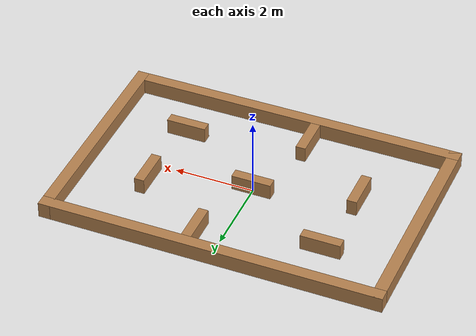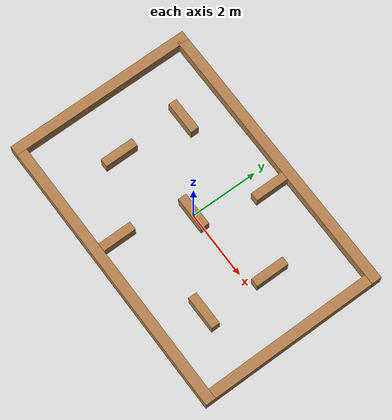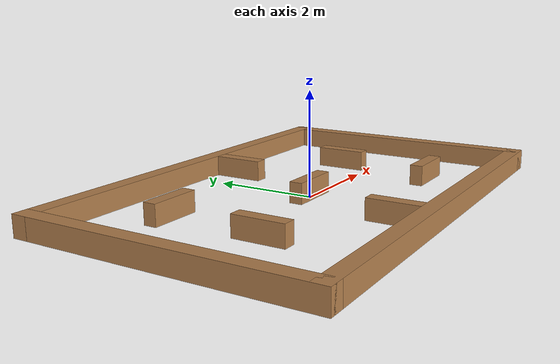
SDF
<?xml version='1.0'?>
<sdf version='1.6'>
  <model name='ICRA2019_map'>
    <link name='Wall_0'>
      <pose frame=''>0 -2.65 0 0 -0 0</pose>
      <self_collide>0</self_collide>
      <kinematic>0</kinematic>
      <visual name='Wall_0_Visual'>
        <pose frame=''>0 0 0.2 0 -0 0</pose>
        <geometry>
          <box>
            <size>8.6 0.3 0.4</size>
          </box>
        </geometry>
        <material>
          <script>
            <uri>file://media/materials/scripts/gazebo.material</uri>
            <name>Gazebo/Wood</name>
          </script>
          <ambient>0.996078 0.47451 0.0196078 1</ambient>
          <diffuse>1 1 1 1</diffuse>
          <specular>0.2 0.2 0.2 1</specular>
          <emissive>0 0 0 1</emissive>
        </material>
        <cast_shadows>1</cast_shadows>
        <transparency>0</transparency>
      </visual>
      <collision name='Wall_0_Collision'>
        <laser_retro>0</laser_retro>
        <max_contacts>10</max_contacts>
        <pose frame=''>0 0 0.2 0 -0 0</pose>
        <geometry>
          <box>
            <size>8.6 0.3 0.4</size>
          </box>
        </geometry>
        <surface>
          <friction>
            <ode>
              <mu>1</mu>
              <mu2>1</mu2>
              <fdir1>0 0 0</fdir1>
              <slip1>0</slip1>
              <slip2>0</slip2>
            </ode>
            <torsional>
              <coefficient>1</coefficient>
              <patch_radius>0</patch_radius>
              <surface_radius>0</surface_radius>
              <use_patch_radius>1</use_patch_radius>
              <ode>
                <slip>0</slip>
              </ode>
            </torsional>
          </friction>
          <bounce>
            <restitution_coefficient>0</restitution_coefficient>
            <threshold>1e+06</threshold>
          </bounce>
          <contact>
            <collide_without_contact>0</collide_without_contact>
            <collide_without_contact_bitmask>1</collide_without_contact_bitmask>
            <collide_bitmask>1</collide_bitmask>
            <ode>
              <soft_cfm>0</soft_cfm>
              <soft_erp>0.2</soft_erp>
              <kp>1e+13</kp>
              <kd>1</kd>
              <max_vel>0.01</max_vel>
              <min_depth>0</min_depth>
            </ode>
            <bullet>
              <split_impulse>1</split_impulse>
              <split_impulse_penetration_threshold>-0.01</split_impulse_penetration_threshold>
              <soft_cfm>0</soft_cfm>
              <soft_erp>0.2</soft_erp>
              <kp>1e+13</kp>
              <kd>1</kd>
            </bullet>
          </contact>
        </surface>
      </collision>
    </link>
    <link name='Wall_1'>
      <pose frame=''>4.15 0 0 0 -0 1.5708</pose>
      <self_collide>0</self_collide>
      <kinematic>0</kinematic>
      <visual name='Wall_1_Visual'>
        <pose frame=''>0 0 0.2 0 -0 0</pose>
        <geometry>
          <box>
            <size>5.6 0.3 0.4</size>
          </box>
        </geometry>
        <material>
          <script>
            <uri>file://media/materials/scripts/gazebo.material</uri>
            <name>Gazebo/Wood</name>
          </script>
          <ambient>0.996078 0.47451 0.0196078 1</ambient>
          <diffuse>1 1 1 1</diffuse>
          <specular>0.2 0.2 0.2 1</specular>
          <emissive>0 0 0 1</emissive>
        </material>
        <cast_shadows>1</cast_shadows>
        <transparency>0</transparency>
      </visual>
      <collision name='Wall_1_Collision'>
        <laser_retro>0</laser_retro>
        <max_contacts>10</max_contacts>
        <pose frame=''>0 0 0.2 0 -0 0</pose>
        <geometry>
          <box>
            <size>5.6 0.3 0.4</size>
          </box>
        </geometry>
        <surface>
          <friction>
            <ode>
              <mu>1</mu>
              <mu2>1</mu2>
              <fdir1>0 0 0</fdir1>
              <slip1>0</slip1>
              <slip2>0</slip2>
            </ode>
            <torsional>
              <coefficient>1</coefficient>
              <patch_radius>0</patch_radius>
              <surface_radius>0</surface_radius>
              <use_patch_radius>1</use_patch_radius>
              <ode>
                <slip>0</slip>
              </ode>
            </torsional>
          </friction>
          <bounce>
            <restitution_coefficient>0</restitution_coefficient>
            <threshold>1e+06</threshold>
          </bounce>
          <contact>
            <collide_without_contact>0</collide_without_contact>
            <collide_without_contact_bitmask>1</collide_without_contact_bitmask>
            <collide_bitmask>1</collide_bitmask>
            <ode>
              <soft_cfm>0</soft_cfm>
              <soft_erp>0.2</soft_erp>
              <kp>1e+13</kp>
              <kd>1</kd>
              <max_vel>0.01</max_vel>
              <min_depth>0</min_depth>
            </ode>
            <bullet>
              <split_impulse>1</split_impulse>
              <split_impulse_penetration_threshold>-0.01</split_impulse_penetration_threshold>
              <soft_cfm>0</soft_cfm>
              <soft_erp>0.2</soft_erp>
              <kp>1e+13</kp>
              <kd>1</kd>
            </bullet>
          </contact>
        </surface>
      </collision>
    </link>
    <link name='Wall_11'>
      <pose frame=''>-2.475 -0.6 0 0 0 -1.5708</pose>
      <self_collide>0</self_collide>
      <kinematic>0</kinematic>
      <gravity>1</gravity>
      <inertial>
        <mass>1</mass>
        <pose frame=''>0 0 0 0 -0 0</pose>
        <inertia>
          <ixx>1</ixx>
          <ixy>0</ixy>
          <ixz>0</ixz>
          <iyy>1</iyy>
          <iyz>0</iyz>
          <izz>1</izz>
        </inertia>
      </inertial>
      <visual name='Wall_11_Visual'>
        <pose frame=''>0 0 0.2 0 -0 0</pose>
        <geometry>
          <box>
            <size>1 0.25 0.4</size>
          </box>
        </geometry>
        <material>
          <script>
            <uri>file://media/materials/scripts/gazebo.material</uri>
            <name>Gazebo/Wood</name>
          </script>
          <ambient>0.996 0.475 0.02 1</ambient>
          <diffuse>1 1 1 1</diffuse>
          <specular>0.2 0.2 0.2 1</specular>
          <emissive>0 0 0 1</emissive>
          <shader type='vertex'>
            <normal_map>__default__</normal_map>
          </shader>
        </material>
        <cast_shadows>1</cast_shadows>
        <transparency>0</transparency>
      </visual>
      <collision name='Wall_11_Collision'>
        <laser_retro>0</laser_retro>
        <max_contacts>10</max_contacts>
        <pose frame=''>0 0 0.2 0 -0 0</pose>
        <geometry>
          <box>
            <size>1 0.25 0.4</size>
          </box>
        </geometry>
        <surface>
          <friction>
            <ode>
              <mu>1</mu>
              <mu2>1</mu2>
              <fdir1>0 0 0</fdir1>
              <slip1>0</slip1>
              <slip2>0</slip2>
            </ode>
            <torsional>
              <coefficient>1</coefficient>
              <patch_radius>0</patch_radius>
              <surface_radius>0</surface_radius>
              <use_patch_radius>1</use_patch_radius>
              <ode>
                <slip>0</slip>
              </ode>
            </torsional>
          </friction>
          <bounce>
            <restitution_coefficient>0</restitution_coefficient>
            <threshold>1e+06</threshold>
          </bounce>
          <contact>
            <collide_without_contact>0</collide_without_contact>
            <collide_without_contact_bitmask>1</collide_without_contact_bitmask>
            <collide_bitmask>1</collide_bitmask>
            <ode>
              <soft_cfm>0</soft_cfm>
              <soft_erp>0.2</soft_erp>
              <kp>1e+13</kp>
              <kd>1</kd>
              <max_vel>0.01</max_vel>
              <min_depth>0</min_depth>
            </ode>
            <bullet>
              <split_impulse>1</split_impulse>
              <split_impulse_penetration_threshold>-0.01</split_impulse_penetration_threshold>
              <soft_cfm>0</soft_cfm>
              <soft_erp>0.2</soft_erp>
              <kp>1e+13</kp>
              <kd>1</kd>
            </bullet>
          </contact>
        </surface>
      </collision>
    </link>
    <link name='Wall_13'>
      <pose frame=''>0.625 2 0 0 0 -1.5708</pose>
      <self_collide>0</self_collide>
      <kinematic>0</kinematic>
      <gravity>1</gravity>
      <inertial>
        <mass>1</mass>
        <pose frame=''>0 0 0 0 -0 0</pose>
        <inertia>
          <ixx>1</ixx>
          <ixy>0</ixy>
          <ixz>0</ixz>
          <iyy>1</iyy>
          <iyz>0</iyz>
          <izz>1</izz>
        </inertia>
      </inertial>
      <visual name='Wall_13_Visual'>
        <pose frame=''>0 0 0.2 0 -0 0</pose>
        <geometry>
          <box>
            <size>1 0.25 0.4</size>
          </box>
        </geometry>
        <material>
          <script>
            <uri>file://media/materials/scripts/gazebo.material</uri>
            <name>Gazebo/Wood</name>
          </script>
          <ambient>0.996 0.475 0.02 1</ambient>
          <diffuse>1 1 1 1</diffuse>
          <specular>0.2 0.2 0.2 1</specular>
          <emissive>0 0 0 1</emissive>
          <shader type='vertex'>
            <normal_map>__default__</normal_map>
          </shader>
        </material>
        <cast_shadows>1</cast_shadows>
        <transparency>0</transparency>
      </visual>
      <collision name='Wall_13_Collision'>
        <laser_retro>0</laser_retro>
        <max_contacts>10</max_contacts>
        <pose frame=''>0 0 0.2 0 -0 0</pose>
        <geometry>
          <box>
            <size>1 0.25 0.4</size>
          </box>
        </geometry>
        <surface>
          <friction>
            <ode>
              <mu>1</mu>
              <mu2>1</mu2>
              <fdir1>0 0 0</fdir1>
              <slip1>0</slip1>
              <slip2>0</slip2>
            </ode>
            <torsional>
              <coefficient>1</coefficient>
              <patch_radius>0</patch_radius>
              <surface_radius>0</surface_radius>
              <use_patch_radius>1</use_patch_radius>
              <ode>
                <slip>0</slip>
              </ode>
            </torsional>
          </friction>
          <bounce>
            <restitution_coefficient>0</restitution_coefficient>
            <threshold>1e+06</threshold>
          </bounce>
          <contact>
            <collide_without_contact>0</collide_without_contact>
            <collide_without_contact_bitmask>1</collide_without_contact_bitmask>
            <collide_bitmask>1</collide_bitmask>
            <ode>
              <soft_cfm>0</soft_cfm>
              <soft_erp>0.2</soft_erp>
              <kp>1e+13</kp>
              <kd>1</kd>
              <max_vel>0.01</max_vel>
              <min_depth>0</min_depth>
            </ode>
            <bullet>
              <split_impulse>1</split_impulse>
              <split_impulse_penetration_threshold>-0.01</split_impulse_penetration_threshold>
              <soft_cfm>0</soft_cfm>
              <soft_erp>0.2</soft_erp>
              <kp>1e+13</kp>
              <kd>1</kd>
            </bullet>
          </contact>
        </surface>
      </collision>
    </link>
    <link name='Wall_15'>
      <pose frame=''>2.475 0.6 0 0 -0 1.5708</pose>
      <self_collide>0</self_collide>
      <kinematic>0</kinematic>
      <gravity>1</gravity>
      <inertial>
        <mass>1</mass>
        <pose frame=''>0 0 0 0 -0 0</pose>
        <inertia>
          <ixx>1</ixx>
          <ixy>0</ixy>
          <ixz>0</ixz>
          <iyy>1</iyy>
          <iyz>0</iyz>
          <izz>1</izz>
        </inertia>
      </inertial>
      <visual name='Wall_15_Visual'>
        <pose frame=''>0 0 0.2 0 -0 0</pose>
        <geometry>
          <box>
            <size>1 0.25 0.4</size>
          </box>
        </geometry>
        <material>
          <script>
            <uri>file://media/materials/scripts/gazebo.material</uri>
            <name>Gazebo/Wood</name>
          </script>
          <ambient>0.996 0.475 0.02 1</ambient>
          <diffuse>1 1 1 1</diffuse>
          <specular>0.2 0.2 0.2 1</specular>
          <emissive>0 0 0 1</emissive>
          <shader type='vertex'>
            <normal_map>__default__</normal_map>
          </shader>
        </material>
        <cast_shadows>1</cast_shadows>
        <transparency>0</transparency>
      </visual>
      <collision name='Wall_15_Collision'>
        <laser_retro>0</laser_retro>
        <max_contacts>10</max_contacts>
        <pose frame=''>0 0 0.2 0 -0 0</pose>
        <geometry>
          <box>
            <size>1 0.25 0.4</size>
          </box>
        </geometry>
        <surface>
          <friction>
            <ode>
              <mu>1</mu>
              <mu2>1</mu2>
              <fdir1>0 0 0</fdir1>
              <slip1>0</slip1>
              <slip2>0</slip2>
            </ode>
            <torsional>
              <coefficient>1</coefficient>
              <patch_radius>0</patch_radius>
              <surface_radius>0</surface_radius>
              <use_patch_radius>1</use_patch_radius>
              <ode>
                <slip>0</slip>
              </ode>
            </torsional>
          </friction>
          <bounce>
            <restitution_coefficient>0</restitution_coefficient>
            <threshold>1e+06</threshold>
          </bounce>
          <contact>
            <collide_without_contact>0</collide_without_contact>
            <collide_without_contact_bitmask>1</collide_without_contact_bitmask>
            <collide_bitmask>1</collide_bitmask>
            <ode>
              <soft_cfm>0</soft_cfm>
              <soft_erp>0.2</soft_erp>
              <kp>1e+13</kp>
              <kd>1</kd>
              <max_vel>0.01</max_vel>
              <min_depth>0</min_depth>
            </ode>
            <bullet>
              <split_impulse>1</split_impulse>
              <split_impulse_penetration_threshold>-0.01</split_impulse_penetration_threshold>
              <soft_cfm>0</soft_cfm>
              <soft_erp>0.2</soft_erp>
              <kp>1e+13</kp>
              <kd>1</kd>
            </bullet>
          </contact>
        </surface>
      </collision>
    </link>
    <link name='Wall_17'>
      <pose frame=''>2.3 -1.375 0 0 -0 3.14159</pose>
      <self_collide>0</self_collide>
      <kinematic>0</kinematic>
      <gravity>1</gravity>
      <inertial>
        <mass>1</mass>
        <pose frame=''>0 0 0 0 -0 0</pose>
        <inertia>
          <ixx>1</ixx>
          <ixy>0</ixy>
          <ixz>0</ixz>
          <iyy>1</iyy>
          <iyz>0</iyz>
          <izz>1</izz>
        </inertia>
      </inertial>
      <visual name='Wall_17_Visual'>
        <pose frame=''>0 0 0.2 0 -0 0</pose>
        <geometry>
          <box>
            <size>1 0.25 0.4</size>
          </box>
        </geometry>
        <material>
          <script>
            <uri>file://media/materials/scripts/gazebo.material</uri>
            <name>Gazebo/Wood</name>
          </script>
          <ambient>0.996 0.475 0.02 1</ambient>
          <diffuse>1 1 1 1</diffuse>
          <specular>0.2 0.2 0.2 1</specular>
          <emissive>0 0 0 1</emissive>
          <shader type='vertex'>
            <normal_map>__default__</normal_map>
          </shader>
        </material>
        <cast_shadows>1</cast_shadows>
        <transparency>0</transparency>
      </visual>
      <collision name='Wall_17_Collision'>
        <laser_retro>0</laser_retro>
        <max_contacts>10</max_contacts>
        <pose frame=''>0 0 0.2 0 -0 0</pose>
        <geometry>
          <box>
            <size>1 0.25 0.4</size>
          </box>
        </geometry>
        <surface>
          <friction>
            <ode>
              <mu>1</mu>
              <mu2>1</mu2>
              <fdir1>0 0 0</fdir1>
              <slip1>0</slip1>
              <slip2>0</slip2>
            </ode>
            <torsional>
              <coefficient>1</coefficient>
              <patch_radius>0</patch_radius>
              <surface_radius>0</surface_radius>
              <use_patch_radius>1</use_patch_radius>
              <ode>
                <slip>0</slip>
              </ode>
            </torsional>
          </friction>
          <bounce>
            <restitution_coefficient>0</restitution_coefficient>
            <threshold>1e+06</threshold>
          </bounce>
          <contact>
            <collide_without_contact>0</collide_without_contact>
            <collide_without_contact_bitmask>1</collide_without_contact_bitmask>
            <collide_bitmask>1</collide_bitmask>
            <ode>
              <soft_cfm>0</soft_cfm>
              <soft_erp>0.2</soft_erp>
              <kp>1e+13</kp>
              <kd>1</kd>
              <max_vel>0.01</max_vel>
              <min_depth>0</min_depth>
            </ode>
            <bullet>
              <split_impulse>1</split_impulse>
              <split_impulse_penetration_threshold>-0.01</split_impulse_penetration_threshold>
              <soft_cfm>0</soft_cfm>
              <soft_erp>0.2</soft_erp>
              <kp>1e+13</kp>
              <kd>1</kd>
            </bullet>
          </contact>
        </surface>
      </collision>
    </link>
    <link name='Wall_2'>
      <pose frame=''>0 2.65 0 0 -0 3.14159</pose>
      <self_collide>0</self_collide>
      <kinematic>0</kinematic>
      <visual name='Wall_2_Visual'>
        <pose frame=''>0 0 0.2 0 -0 0</pose>
        <geometry>
          <box>
            <size>8.6 0.3 0.4</size>
          </box>
        </geometry>
        <material>
          <script>
            <uri>file://media/materials/scripts/gazebo.material</uri>
            <name>Gazebo/Wood</name>
          </script>
          <ambient>0.996078 0.47451 0.0196078 1</ambient>
          <diffuse>1 1 1 1</diffuse>
          <specular>0.2 0.2 0.2 1</specular>
          <emissive>0 0 0 1</emissive>
        </material>
        <cast_shadows>1</cast_shadows>
        <transparency>0</transparency>
      </visual>
      <collision name='Wall_2_Collision'>
        <laser_retro>0</laser_retro>
        <max_contacts>10</max_contacts>
        <pose frame=''>0 0 0.2 0 -0 0</pose>
        <geometry>
          <box>
            <size>8.6 0.3 0.4</size>
          </box>
        </geometry>
        <surface>
          <friction>
            <ode>
              <mu>1</mu>
              <mu2>1</mu2>
              <fdir1>0 0 0</fdir1>
              <slip1>0</slip1>
              <slip2>0</slip2>
            </ode>
            <torsional>
              <coefficient>1</coefficient>
              <patch_radius>0</patch_radius>
              <surface_radius>0</surface_radius>
              <use_patch_radius>1</use_patch_radius>
              <ode>
                <slip>0</slip>
              </ode>
            </torsional>
          </friction>
          <bounce>
            <restitution_coefficient>0</restitution_coefficient>
            <threshold>1e+06</threshold>
          </bounce>
          <contact>
            <collide_without_contact>0</collide_without_contact>
            <collide_without_contact_bitmask>1</collide_without_contact_bitmask>
            <collide_bitmask>1</collide_bitmask>
            <ode>
              <soft_cfm>0</soft_cfm>
              <soft_erp>0.2</soft_erp>
              <kp>1e+13</kp>
              <kd>1</kd>
              <max_vel>0.01</max_vel>
              <min_depth>0</min_depth>
            </ode>
            <bullet>
              <split_impulse>1</split_impulse>
              <split_impulse_penetration_threshold>-0.01</split_impulse_penetration_threshold>
              <soft_cfm>0</soft_cfm>
              <soft_erp>0.2</soft_erp>
              <kp>1e+13</kp>
              <kd>1</kd>
            </bullet>
          </contact>
        </surface>
      </collision>
    </link>
    <link name='Wall_3'>
      <pose frame=''>-4.15 0 0 0 0 -1.5708</pose>
      <self_collide>0</self_collide>
      <kinematic>0</kinematic>
      <visual name='Wall_3_Visual'>
        <pose frame=''>0 0 0.2 0 -0 0</pose>
        <geometry>
          <box>
            <size>5.6 0.3 0.4</size>
          </box>
        </geometry>
        <material>
          <script>
            <uri>file://media/materials/scripts/gazebo.material</uri>
            <name>Gazebo/Wood</name>
          </script>
          <ambient>0.996078 0.47451 0.0196078 1</ambient>
          <diffuse>1 1 1 1</diffuse>
          <specular>0.2 0.2 0.2 1</specular>
          <emissive>0 0 0 1</emissive>
        </material>
        <cast_shadows>1</cast_shadows>
        <transparency>0</transparency>
      </visual>
      <collision name='Wall_3_Collision'>
        <laser_retro>0</laser_retro>
        <max_contacts>10</max_contacts>
        <pose frame=''>0 0 0.2 0 -0 0</pose>
        <geometry>
          <box>
            <size>5.6 0.3 0.4</size>
          </box>
        </geometry>
        <surface>
          <friction>
            <ode>
              <mu>1</mu>
              <mu2>1</mu2>
              <fdir1>0 0 0</fdir1>
              <slip1>0</slip1>
              <slip2>0</slip2>
            </ode>
            <torsional>
              <coefficient>1</coefficient>
              <patch_radius>0</patch_radius>
              <surface_radius>0</surface_radius>
              <use_patch_radius>1</use_patch_radius>
              <ode>
                <slip>0</slip>
              </ode>
            </torsional>
          </friction>
          <bounce>
            <restitution_coefficient>0</restitution_coefficient>
            <threshold>1e+06</threshold>
          </bounce>
          <contact>
            <collide_without_contact>0</collide_without_contact>
            <collide_without_contact_bitmask>1</collide_without_contact_bitmask>
            <collide_bitmask>1</collide_bitmask>
            <ode>
              <soft_cfm>0</soft_cfm>
              <soft_erp>0.2</soft_erp>
              <kp>1e+13</kp>
              <kd>1</kd>
              <max_vel>0.01</max_vel>
              <min_depth>0</min_depth>
            </ode>
            <bullet>
              <split_impulse>1</split_impulse>
              <split_impulse_penetration_threshold>-0.01</split_impulse_penetration_threshold>
              <soft_cfm>0</soft_cfm>
              <soft_erp>0.2</soft_erp>
              <kp>1e+13</kp>
              <kd>1</kd>
            </bullet>
          </contact>
        </surface>
      </collision>
    </link>
    <link name='Wall_5'>
      <pose frame=''>-0.625 -2 0 0 0 -1.5708</pose>
      <self_collide>0</self_collide>
      <kinematic>0</kinematic>
      <gravity>1</gravity>
      <inertial>
        <mass>1</mass>
        <pose frame=''>0 0 0 0 -0 0</pose>
        <inertia>
          <ixx>1</ixx>
          <ixy>0</ixy>
          <ixz>0</ixz>
          <iyy>1</iyy>
          <iyz>0</iyz>
          <izz>1</izz>
        </inertia>
      </inertial>
      <visual name='Wall_5_Visual'>
        <pose frame=''>0 0 0.2 0 -0 0</pose>
        <geometry>
          <box>
            <size>1 0.25 0.4</size>
          </box>
        </geometry>
        <material>
          <script>
            <uri>file://media/materials/scripts/gazebo.material</uri>
            <name>Gazebo/Wood</name>
          </script>
          <ambient>0.996 0.475 0.02 1</ambient>
          <diffuse>1 1 1 1</diffuse>
          <specular>0.2 0.2 0.2 1</specular>
          <emissive>0 0 0 1</emissive>
          <shader type='vertex'>
            <normal_map>__default__</normal_map>
          </shader>
        </material>
        <cast_shadows>1</cast_shadows>
        <transparency>0</transparency>
      </visual>
      <collision name='Wall_5_Collision'>
        <laser_retro>0</laser_retro>
        <max_contacts>10</max_contacts>
        <pose frame=''>0 0 0.2 0 -0 0</pose>
        <geometry>
          <box>
            <size>1 0.25 0.4</size>
          </box>
        </geometry>
        <surface>
          <friction>
            <ode>
              <mu>1</mu>
              <mu2>1</mu2>
              <fdir1>0 0 0</fdir1>
              <slip1>0</slip1>
              <slip2>0</slip2>
            </ode>
            <torsional>
              <coefficient>1</coefficient>
              <patch_radius>0</patch_radius>
              <surface_radius>0</surface_radius>
              <use_patch_radius>1</use_patch_radius>
              <ode>
                <slip>0</slip>
              </ode>
            </torsional>
          </friction>
          <bounce>
            <restitution_coefficient>0</restitution_coefficient>
            <threshold>1e+06</threshold>
          </bounce>
          <contact>
            <collide_without_contact>0</collide_without_contact>
            <collide_without_contact_bitmask>1</collide_without_contact_bitmask>
            <collide_bitmask>1</collide_bitmask>
            <ode>
              <soft_cfm>0</soft_cfm>
              <soft_erp>0.2</soft_erp>
              <kp>1e+13</kp>
              <kd>1</kd>
              <max_vel>0.01</max_vel>
              <min_depth>0</min_depth>
            </ode>
            <bullet>
              <split_impulse>1</split_impulse>
              <split_impulse_penetration_threshold>-0.01</split_impulse_penetration_threshold>
              <soft_cfm>0</soft_cfm>
              <soft_erp>0.2</soft_erp>
              <kp>1e+13</kp>
              <kd>1</kd>
            </bullet>
          </contact>
        </surface>
      </collision>
    </link>
    <link name='Wall_7'>
      <pose frame=''>0 0 0 0 -0 0</pose>
      <self_collide>0</self_collide>
      <kinematic>0</kinematic>
      <gravity>1</gravity>
      <inertial>
        <mass>1</mass>
        <pose frame=''>0 0 0 0 -0 0</pose>
        <inertia>
          <ixx>1</ixx>
          <ixy>0</ixy>
          <ixz>0</ixz>
          <iyy>1</iyy>
          <iyz>0</iyz>
          <izz>1</izz>
        </inertia>
      </inertial>
      <visual name='Wall_7_Visual'>
        <pose frame=''>0 0 0.2 0 -0 0</pose>
        <geometry>
          <box>
            <size>1 0.25 0.4</size>
          </box>
        </geometry>
        <material>
          <script>
            <uri>file://media/materials/scripts/gazebo.material</uri>
            <name>Gazebo/Wood</name>
          </script>
          <ambient>0.996 0.475 0.02 1</ambient>
          <diffuse>1 1 1 1</diffuse>
          <specular>0.2 0.2 0.2 1</specular>
          <emissive>0 0 0 1</emissive>
          <shader type='vertex'>
            <normal_map>__default__</normal_map>
          </shader>
        </material>
        <cast_shadows>1</cast_shadows>
        <transparency>0</transparency>
      </visual>
      <collision name='Wall_7_Collision'>
        <laser_retro>0</laser_retro>
        <max_contacts>10</max_contacts>
        <pose frame=''>0 0 0.2 0 -0 0</pose>
        <geometry>
          <box>
            <size>1 0.25 0.4</size>
          </box>
        </geometry>
        <surface>
          <friction>
            <ode>
              <mu>1</mu>
              <mu2>1</mu2>
              <fdir1>0 0 0</fdir1>
              <slip1>0</slip1>
              <slip2>0</slip2>
            </ode>
            <torsional>
              <coefficient>1</coefficient>
              <patch_radius>0</patch_radius>
              <surface_radius>0</surface_radius>
              <use_patch_radius>1</use_patch_radius>
              <ode>
                <slip>0</slip>
              </ode>
            </torsional>
          </friction>
          <bounce>
            <restitution_coefficient>0</restitution_coefficient>
            <threshold>1e+06</threshold>
          </bounce>
          <contact>
            <collide_without_contact>0</collide_without_contact>
            <collide_without_contact_bitmask>1</collide_without_contact_bitmask>
            <collide_bitmask>1</collide_bitmask>
            <ode>
              <soft_cfm>0</soft_cfm>
              <soft_erp>0.2</soft_erp>
              <kp>1e+13</kp>
              <kd>1</kd>
              <max_vel>0.01</max_vel>
              <min_depth>0</min_depth>
            </ode>
            <bullet>
              <split_impulse>1</split_impulse>
              <split_impulse_penetration_threshold>-0.01</split_impulse_penetration_threshold>
              <soft_cfm>0</soft_cfm>
              <soft_erp>0.2</soft_erp>
              <kp>1e+13</kp>
              <kd>1</kd>
            </bullet>
          </contact>
        </surface>
      </collision>
    </link>
    <link name='Wall_9'>
      <pose frame=''>-2.3 1.375 0 0 -0 0</pose>
      <self_collide>0</self_collide>
      <kinematic>0</kinematic>
      <gravity>1</gravity>
      <inertial>
        <mass>1</mass>
        <pose frame=''>0 0 0 0 -0 0</pose>
        <inertia>
          <ixx>1</ixx>
          <ixy>0</ixy>
          <ixz>0</ixz>
          <iyy>1</iyy>
          <iyz>0</iyz>
          <izz>1</izz>
        </inertia>
      </inertial>
      <visual name='Wall_9_Visual'>
        <pose frame=''>0 0 0.2 0 -0 0</pose>
        <geometry>
          <box>
            <size>1 0.25 0.4</size>
          </box>
        </geometry>
        <material>
          <script>
            <uri>file://media/materials/scripts/gazebo.material</uri>
            <name>Gazebo/Wood</name>
          </script>
          <ambient>0.996 0.475 0.02 1</ambient>
          <diffuse>1 1 1 1</diffuse>
          <specular>0.2 0.2 0.2 1</specular>
          <emissive>0 0 0 1</emissive>
          <shader type='vertex'>
            <normal_map>__default__</normal_map>
          </shader>
        </material>
        <cast_shadows>1</cast_shadows>
        <transparency>0</transparency>
      </visual>
      <collision name='Wall_9_Collision'>
        <laser_retro>0</laser_retro>
        <max_contacts>10</max_contacts>
        <pose frame=''>0 0 0.2 0 -0 0</pose>
        <geometry>
          <box>
            <size>1 0.25 0.4</size>
          </box>
        </geometry>
        <surface>
          <friction>
            <ode>
              <mu>1</mu>
              <mu2>1</mu2>
              <fdir1>0 0 0</fdir1>
              <slip1>0</slip1>
              <slip2>0</slip2>
            </ode>
            <torsional>
              <coefficient>1</coefficient>
              <patch_radius>0</patch_radius>
              <surface_radius>0</surface_radius>
              <use_patch_radius>1</use_patch_radius>
              <ode>
                <slip>0</slip>
              </ode>
            </torsional>
          </friction>
          <bounce>
            <restitution_coefficient>0</restitution_coefficient>
            <threshold>1e+06</threshold>
          </bounce>
          <contact>
            <collide_without_contact>0</collide_without_contact>
            <collide_without_contact_bitmask>1</collide_without_contact_bitmask>
            <collide_bitmask>1</collide_bitmask>
            <ode>
              <soft_cfm>0</soft_cfm>
              <soft_erp>0.2</soft_erp>
              <kp>1e+13</kp>
              <kd>1</kd>
              <max_vel>0.01</max_vel>
              <min_depth>0</min_depth>
            </ode>
            <bullet>
              <split_impulse>1</split_impulse>
              <split_impulse_penetration_threshold>-0.01</split_impulse_penetration_threshold>
              <soft_cfm>0</soft_cfm>
              <soft_erp>0.2</soft_erp>
              <kp>1e+13</kp>
              <kd>1</kd>
            </bullet>
          </contact>
        </surface>
      </collision>
    </link>
    <static>1</static>
    <allow_auto_disable>1</allow_auto_disable>
  </model>
</sdf>
